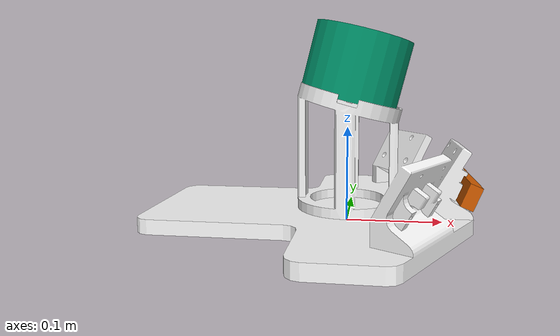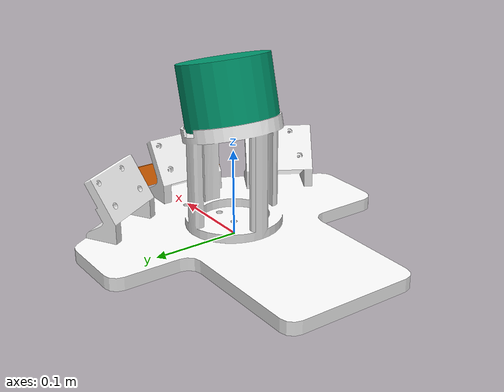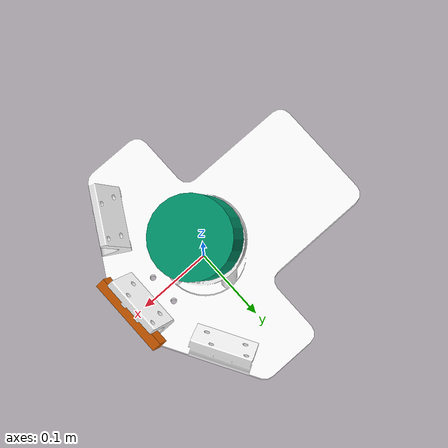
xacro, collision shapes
<?xml version="1.0"?>

<robot name="HexPercept1_example" xmlns:xacro="http://www.ros.org/wiki/xacro">
    <xacro:property name="lidar_frame_name" value="velodyneLidar"/>
    <xacro:property name="camera_frame_name" value="camera"/>
    <link name="base_link"/>

    <xacro:include filename="$(find hexapod_elevation_mapping)/model/modules/HexPercept1/HexPercept1.xacro"/>
    <xacro:HexPercept1 parent_link="base_link" lidar_frame_name="${lidar_frame_name}" camera_frame_name="${camera_frame_name}">
        <origin rpy="-1.5708 0 3.1415" xyz="0 0 0"/>
    </xacro:HexPercept1>

</robot>

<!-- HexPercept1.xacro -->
<robot xmlns:xacro="http://www.ros.org/wiki/xacro">
    <xacro:macro name="HexPercept1" params="parent_link *origin lidar_frame_name:=velodyneLidar camera_frame_name:=camera">
        <!-- Const -->
        <xacro:arg name="gpu" default="false"/>
        <xacro:property name="gpu" value="$(arg gpu)" />
        <xacro:arg name="organize_cloud" default="false"/>
        <xacro:property name="organize_cloud" value="$(arg organize_cloud)" />

        <!-- Interface Joint -->
        <joint name="sensorSupport_joint" type="fixed">
            <parent link="${parent_link}"/>
            <child link="sensorSupport"/>
            <xacro:insert_block name="origin"/>
        </joint>

        <!-- root link can not have interia, so add this link and joint -->
        <link name="sensorSupport">
            <inertial>
                <origin xyz="0 0 0.0" rpy="0 0 0"/>
                <!-- FIXME: need to update mass -->
                <mass value="30.0"/>
                <!-- FIXME: need to update ixx,iyy and izz -->
                <inertia ixx="0.1" ixy="0.0" ixz="0.0" iyy="0.1" iyz="0.0" izz="0.1}"/>
            </inertial>

            <visual>
                <origin xyz="0 0 0" rpy="0 0 0" />
                <geometry>
                    <mesh filename="package://hexapod_elevation_mapping/model/modules/HexPercept1/sensorSupport.STL"/>
                </geometry>
                <material name="">
                    <color rgba="1 1 1 1" />
                </material>
            </visual>

            <collision>
                <origin xyz="0 0 0" rpy="0 0 0" />
                <geometry>
                    <mesh filename="package://hexapod_elevation_mapping/model/modules/HexPercept1/sensorSupport.STL"/>
                </geometry>
            </collision>
        </link>

        <xacro:include filename="$(find hexapod_elevation_mapping)/model/sensors/VLP-16/xacro/VLP-16.urdf.xacro"/>
        <xacro:VLP-16 parent="sensorSupport" name="${lidar_frame_name}" topic="/velodyne_points" organize_cloud="${organize_cloud}" hz="10" samples="220" gpu="${gpu}">
            <origin xyz="0 -0.13 0" rpy="1.5708 1.5708 -0.25" />
        </xacro:VLP-16>

        <xacro:include filename="$(find realsense_ros_gazebo)/xacro/tracker.xacro"/>
        <xacro:realsense_T265 sensor_name="${camera_frame_name}" parent_link="sensorSupport" rate="30.0">
            <origin rpy="-1.5708 0 ${3.14159 - 0.395}" xyz="-0.12 -0.04 0"/>
        </xacro:realsense_T265>
    </xacro:macro>
</robot>

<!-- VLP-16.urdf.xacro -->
<robot xmlns:xacro="http://www.ros.org/wiki/xacro" name="VLP-16">
  <xacro:property name="M_PI" value="3.1415926535897931" />
  <xacro:macro name="VLP-16" params="*origin parent:=base_link name:=velodyne topic:=/velodyne_points organize_cloud:=false hz:=10 lasers:=16 samples:=1875 collision_range:=0.3 min_range:=0.9 max_range:=130.0 noise:=0.008 min_angle:=-${M_PI} max_angle:=${M_PI} gpu:=false">

    <joint name="${name}_base_mount_joint" type="fixed">
      <xacro:insert_block name="origin" />
      <parent link="${parent}"/>
      <child link="${name}_base_link"/>
    </joint>

    <link name="${name}_base_link">
      <inertial>
        <mass value="0.83"/>
        <origin xyz="0 0 0.03585"/>
        <inertia ixx="${(0.83 * (3.0*0.0516*0.0516 + 0.0717*0.0717)) / 12.0}" ixy="0" ixz="0"
          iyy="${(0.83 * (3.0*0.0516*0.0516 + 0.0717*0.0717)) / 12.0}" iyz="0"
          izz="${0.5 * 0.83 * (0.0516*0.0516)}"/>
      </inertial>
      <visual>
        <geometry>
          <mesh filename="package://hexapod_elevation_mapping/model/sensors/VLP-16/urdf/meshes/VLP16_base_1.dae" />
        </geometry>
      </visual>
      <visual>
        <geometry>
          <mesh filename="package://hexapod_elevation_mapping/model/sensors/VLP-16/urdf/meshes/VLP16_base_2.dae" />
        </geometry>
      </visual>
      <collision>
        <origin rpy="0 0 0" xyz="0 0 0.03585"/>
        <geometry>
          <cylinder radius="0.0516" length="0.0717"/>
        </geometry>
      </collision>
    </link>

    <joint name="${name}_base_scan_joint" type="fixed" >
      <origin xyz="0 0 0.0377" rpy="0 0 0" />
      <parent link="${name}_base_link" />
      <child link="${name}"/>
    </joint>

    <link name="${name}">
      <inertial>
        <mass value="0.01"/>
        <origin xyz="0 0 0"/>
        <inertia ixx="1e-7" ixy="0" ixz="0" iyy="1e-7" iyz="0" izz="1e-7"/>
      </inertial>
      <visual>
        <origin xyz="0 0 -0.0377" />
        <geometry>
          <mesh filename="package://hexapod_elevation_mapping/model/sensors/VLP-16/urdf/meshes/VLP16_scan.dae" />
        </geometry>
      </visual>
      <collision>
        <geometry>
          <sphere radius="0"/>
        </geometry>
      </collision>
    </link>

    <!-- Gazebo requires the velodyne_gazebo_plugins package -->
    <gazebo reference="${name}">
      <xacro:if value="${gpu}">
        <sensor type="gpu_ray" name="${name}-VLP16">
          <pose>0 0 0 0 0 0</pose>
          <visualize>false</visualize>
          <update_rate>${hz}</update_rate>
          <ray>
            <scan>
              <horizontal>
                <samples>${samples}</samples>
                <resolution>1</resolution>
                <min_angle>${min_angle}</min_angle>
                <max_angle>${max_angle}</max_angle>
              </horizontal>
              <vertical>
                <samples>${lasers}</samples>
                <resolution>1</resolution>
                <min_angle>-${15.0*M_PI/180.0}</min_angle>
                <max_angle> ${15.0*M_PI/180.0}</max_angle>
              </vertical>
            </scan>
            <range>
              <min>${collision_range}</min>
              <max>${max_range+1}</max>
              <resolution>0.001</resolution>
            </range>
            <noise>
              <type>gaussian</type>
              <mean>0.0</mean>
              <stddev>0.0</stddev>
            </noise>
          </ray>
          <plugin name="gazebo_ros_laser_controller" filename="libgazebo_ros_velodyne_gpu_laser.so">
            <topicName>${topic}</topicName>
            <frameName>${name}</frameName>
            <organize_cloud>${organize_cloud}</organize_cloud>
            <min_range>${min_range}</min_range>
            <max_range>${max_range}</max_range>
            <gaussianNoise>${noise}</gaussianNoise>
          </plugin>
        </sensor>
      </xacro:if>
      <xacro:unless value="${gpu}">
        <sensor type="ray" name="${name}-VLP16">
          <pose>0 0 0 0 0 0</pose>
          <visualize>false</visualize>
          <update_rate>${hz}</update_rate>
          <ray>
            <scan>
              <horizontal>
                <samples>${samples}</samples>
                <resolution>1</resolution>
                <min_angle>${min_angle}</min_angle>
                <max_angle>${max_angle}</max_angle>
              </horizontal>
              <vertical>
                <samples>${lasers}</samples>
                <resolution>1</resolution>
                <min_angle>-${15.0*M_PI/180.0}</min_angle>
                <max_angle> ${15.0*M_PI/180.0}</max_angle>
              </vertical>
            </scan>
            <range>
              <min>${collision_range}</min>
              <max>${max_range+1}</max>
              <resolution>0.001</resolution>
            </range>
            <noise>
              <type>gaussian</type>
              <mean>0.0</mean>
              <stddev>0.0</stddev>
            </noise>
          </ray>
          <plugin name="gazebo_ros_laser_controller" filename="libgazebo_ros_velodyne_laser.so">
            <topicName>${topic}</topicName>
            <frameName>${name}</frameName>
            <organize_cloud>${organize_cloud}</organize_cloud>
            <min_range>${min_range}</min_range>
            <max_range>${max_range}</max_range>
            <gaussianNoise>${noise}</gaussianNoise>
          </plugin>
        </sensor>
      </xacro:unless>
    </gazebo>

  </xacro:macro>
</robot>

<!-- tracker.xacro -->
<robot xmlns:xacro="http://www.ros.org/wiki/xacro">

  <xacro:macro name="T265_fisheye" params="sensor_name reference_frame topic rate">
    <gazebo reference="${reference_frame}">
      <sensor name="camera" type="wideanglecamera">
        <camera>
          <horizontal_fov>6.283</horizontal_fov>
          <image>
            <width>320</width>
            <height>240</height>
          </image>
          <clip>
            <near>0.1</near>
            <far>100</far>
          </clip>
          <lens>
            <type>custom</type>
            <custom_function>
              <c1>1.05</c1>
              <c2>4</c2>
              <f>1.0</f>
              <fun>tan</fun>
            </custom_function>
            <scale_to_hfov>true</scale_to_hfov>
            <cutoff_angle>6.283</cutoff_angle>
            <env_texture_size>512</env_texture_size>
          </lens>
          <always_on>true</always_on>
          <update_rate>30</update_rate>
        </camera>
        <plugin name="camera_controller" filename="libgazebo_ros_camera.so">
          <cameraName>${sensor_name}/${topic}</cameraName>
          <imageTopicName>image_raw</imageTopicName>
          <cameraInfoTopicName>camera_info</cameraInfoTopicName>
          <frameName>${reference_frame}</frameName>
          <hackBaseline>0.07</hackBaseline>
          <distortionK1>-0.007419134024530649</distortionK1>
          <distortionK2>0.041209351271390915</distortionK2>
          <distortionK3>-0.03811917081475258</distortionK3>
          <distortionT1>0.006366158835589886</distortionT1>
          <distortionT2>0.0</distortionT2>
          <CxPrime>416.00531005859375</CxPrime>
          <Cx>16.00531005859375</Cx>
          <Cy>403.38909912109375</Cy>
        </plugin>
      </sensor>
    </gazebo>
  </xacro:macro>

  <!-- INTEL REALSENSE T265 -->

  <xacro:macro name="realsense_T265" params="sensor_name parent_link rate *origin">

    <joint name="${sensor_name}_odom_frame_joint" type="fixed">
        <parent link="${parent_link}"/>
        <child link="${sensor_name}_odom_frame"/>
        <xacro:insert_block name="origin"/>
    </joint>

    <joint name="${sensor_name}_pose_frame_joint" type="fixed">
        <parent link="${sensor_name}_odom_frame"/>
        <child link="${sensor_name}_pose_frame"/>
        <origin rpy="0 0 0" xyz="0 0 0"/> <!-- check on real hw -->
    </joint>
    <link name="${sensor_name}_odom_frame" />

    <link name="${sensor_name}_pose_frame">
        <visual>
            <origin rpy="1.57 0 1.57" xyz="0 0 -0.478"/>
            <geometry>
                <mesh filename="package://realsense_ros_gazebo/meshes/realsense_t265.stl" scale="0.001 0.001 0.001"/>
            </geometry>
        </visual>
        <collision>
            <geometry>
                <box size="0.013 0.108 0.024"/>
            </geometry>
        </collision>
        <inertial>
            <mass value="0.055"/>
            <origin rpy="0 0 0" xyz="0 0 0"/>
            <inertia ixx="9.108e-05"
                     ixy="0"
                     ixz="0"
                     iyy="2.51e-06"
                     iyz="0"
                     izz="8.931e-05"/>
        </inertial>
    </link>

    <joint name="${sensor_name}_joint" type="fixed">
        <parent link="${sensor_name}_pose_frame"/>
        <child link="${sensor_name}_link"/>
        <origin rpy="0 0 0" xyz="0 0 0"/> <!-- check on real hw -->
    </joint>
    <link name="${sensor_name}_link"/>

    <joint name="${sensor_name}_fisheye1_joint" type="fixed">
        <parent link="${sensor_name}_link"/>
        <child link="${sensor_name}_fisheye1_frame"/>
        <origin rpy="0 0 0" xyz="0 0.042 0"/>
    </joint>
    <link name="${sensor_name}_fisheye1_frame"/>

    <joint name="${sensor_name}_fisheye1_optical_joint" type="fixed">
        <parent link="${sensor_name}_fisheye1_frame"/>
        <child link="${sensor_name}_fisheye1_optical_frame"/>
        <origin rpy="0 0 0" xyz="0.01 0 0"/>
    </joint>
    <link name="${sensor_name}_fisheye1_optical_frame"/>
    <xacro:T265_fisheye
      sensor_name="${sensor_name}"
      reference_frame="${sensor_name}_fisheye1_optical_frame"
      topic="fisheye1"
      rate="${rate}">
    </xacro:T265_fisheye>

    <joint name="${sensor_name}_fisheye2_joint" type="fixed">
        <parent link="${sensor_name}_link"/>
        <child link="${sensor_name}_fisheye2_frame"/>
        <origin rpy="0 0 0" xyz="0 -0.022 0"/>
    </joint>
    <link name="${sensor_name}_fisheye2_frame"/>

    <joint name="${sensor_name}_fisheye2_optical_joint" type="fixed">
        <parent link="${sensor_name}_fisheye2_frame"/>
        <child link="${sensor_name}_fisheye2_optical_frame"/>
        <origin rpy="0 0 0" xyz="0.01 0 0"/>
    </joint>
    <link name="${sensor_name}_fisheye2_optical_frame"/>
    <xacro:T265_fisheye
      sensor_name="${sensor_name}"
      reference_frame="${sensor_name}_fisheye2_optical_frame"
      topic="fisheye2"
      rate="${rate}">
    </xacro:T265_fisheye>

    <joint name="${sensor_name}_gyro_joint" type="fixed">
        <parent link="${sensor_name}_link"/>
        <child link="${sensor_name}_gyro_frame"/>
        <origin rpy="0 0 0" xyz="0 0 0"/> <!-- check on real hw -->
    </joint>
    <link name="${sensor_name}_gyro_frame"/>

    <gazebo reference="${sensor_name}_gyro_frame">
        <gravity>true</gravity>
        <sensor name="${sensor_name}_imu" type="imu">
            <always_on>true</always_on>
            <update_rate>${rate}</update_rate>
            <visualize>false</visualize>
            <plugin filename="libgazebo_ros_imu_sensor.so" name="imu_plugin">
                <topicName>${sensor_name}/gyro/sample</topicName>
                <bodyName>${sensor_name}_pose_frame</bodyName>
                <updateRateHZ>${rate}</updateRateHZ>
                <gaussianNoise>0.000001</gaussianNoise>
                <xyzOffset>0 0 0</xyzOffset>
                <rpyOffset>0 0 0</rpyOffset>
                <frameName>${sensor_name}_link</frameName>
            </plugin>
        </sensor>
    </gazebo>

    <joint name="${sensor_name}_accel_joint" type="fixed">
        <parent link="${sensor_name}_link"/>
        <child link="${sensor_name}_accel_frame"/>
        <origin rpy="0 0 0" xyz="0 0 0"/> <!-- check on real hw -->
    </joint>
    <link name="${sensor_name}_accel_frame"/> <!-- dummy -->

    <gazebo> <!-- odometry -->
        <plugin name="p3d_base_controller" filename="libgazebo_ros_p3d.so">
            <alwaysOn>true</alwaysOn>
            <updateRate>${rate}</updateRate>
            <bodyName>${sensor_name}_odom_frame</bodyName>
            <topicName>${sensor_name}/odom/sample</topicName>
            <gaussianNoise>0.001</gaussianNoise>
            <frameName>map</frameName>
            <xyzOffsets>0 0 0</xyzOffsets>
            <rpyOffsets>0 0 0</rpyOffsets>
        </plugin>
    </gazebo>

  </xacro:macro>

</robot>
